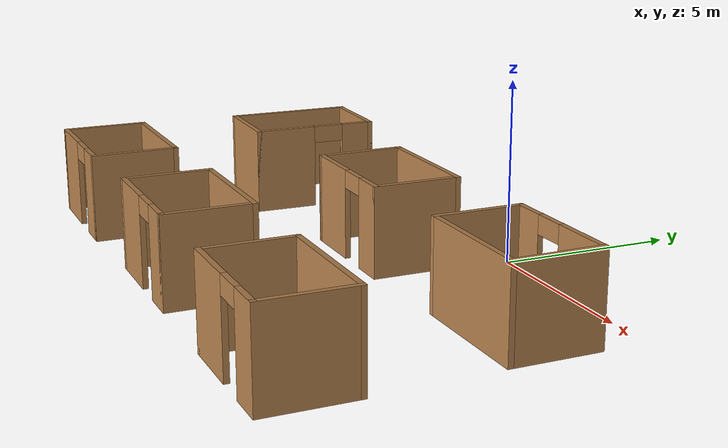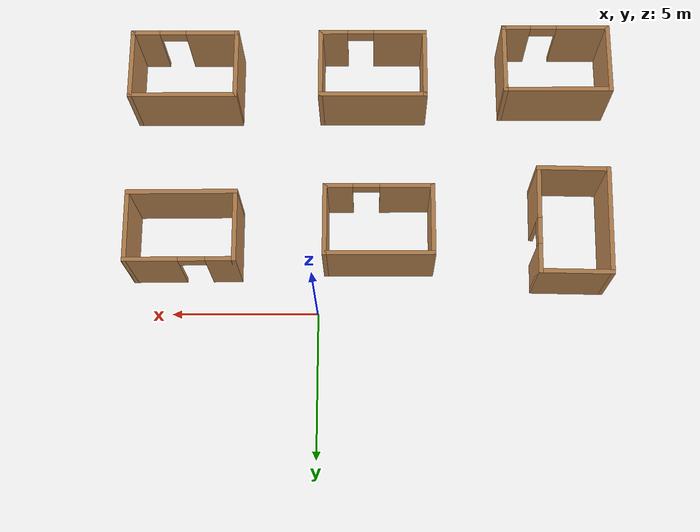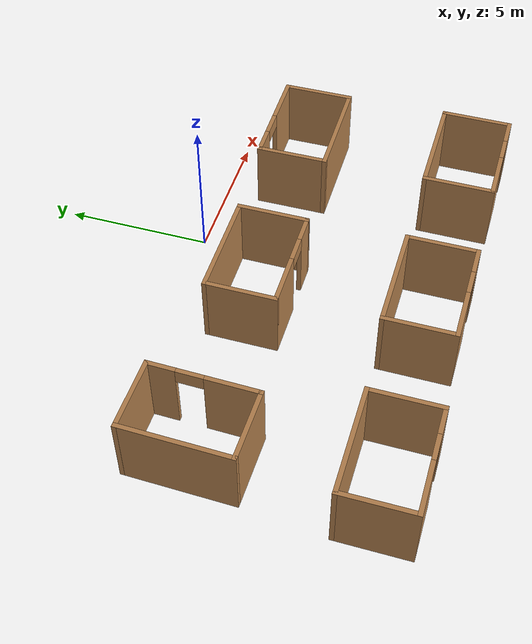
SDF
<sdf version="1.6">
 <world name="default">
  <model name="Small_Room_clone">
   <pose>-8.57106 -2.60077 0 0 -0 1.54961</pose>
   <link name="Wall_0">
    <pose>0 -1.175 0 0 -0 0</pose>
    <visual name="Wall_0_Visual_0">
     <pose>-0.9525 0 1.25 0 -0 0</pose>
     <geometry><box><size>1.845 0.15 2.5</size></box></geometry>
     <material>
      <script><uri>file://media/materials/scripts/gazebo.material</uri><name>Gazebo/Wood</name></script>
      <ambient>1 1 1 1</ambient>
     </material>
     <meta><layer>0</layer></meta>
    </visual>
    <collision name="Wall_0_Collision_0">
     <geometry><box><size>1.845 0.15 2.5</size></box></geometry>
     <pose>-0.9525 0 1.25 0 -0 0</pose>
    </collision>
    <visual name="Wall_0_Visual_1">
     <pose>1.3725 0 1.25 0 -0 0</pose>
     <geometry><box><size>1.005 0.15 2.5</size></box></geometry>
     <material>
      <script><uri>file://media/materials/scripts/gazebo.material</uri><name>Gazebo/Wood</name></script>
      <ambient>1 1 1 1</ambient>
     </material>
     <meta><layer>0</layer></meta>
    </visual>
    <collision name="Wall_0_Collision_1">
     <geometry><box><size>1.005 0.15 2.5</size></box></geometry>
     <pose>1.3725 0 1.25 0 -0 0</pose>
    </collision>
    <visual name="Wall_0_Visual_2">
     <pose>0.42 0 2.25 0 -0 0</pose>
     <geometry><box><size>0.9 0.15 0.5</size></box></geometry>
     <material>
      <script><uri>file://media/materials/scripts/gazebo.material</uri><name>Gazebo/Wood</name></script>
      <ambient>1 1 1 1</ambient>
     </material>
     <meta><layer>0</layer></meta>
    </visual>
    <collision name="Wall_0_Collision_2">
     <geometry><box><size>0.9 0.15 0.5</size></box></geometry>
     <pose>0.42 0 2.25 0 -0 0</pose>
    </collision>
   </link>
   <link name="Wall_1">
    <collision name="Wall_1_Collision">
     <geometry><box><size>2.5 0.15 2.5</size></box></geometry>
     <pose>0 0 1.25 0 -0 0</pose>
    </collision>
    <visual name="Wall_1_Visual">
     <pose>0 0 1.25 0 -0 0</pose>
     <geometry><box><size>2.5 0.15 2.5</size></box></geometry>
     <material>
      <script><uri>file://media/materials/scripts/gazebo.material</uri><name>Gazebo/Wood</name></script>
      <ambient>1 1 1 1</ambient>
     </material>
     <meta><layer>0</layer></meta>
    </visual>
    <pose>1.8 0 0 0 -0 1.5708</pose>
   </link>
   <link name="Wall_2">
    <collision name="Wall_2_Collision">
     <geometry><box><size>3.75 0.15 2.5</size></box></geometry>
     <pose>0 0 1.25 0 -0 0</pose>
    </collision>
    <visual name="Wall_2_Visual">
     <pose>0 0 1.25 0 -0 0</pose>
     <geometry><box><size>3.75 0.15 2.5</size></box></geometry>
     <material>
      <script><uri>file://media/materials/scripts/gazebo.material</uri><name>Gazebo/Wood</name></script>
      <ambient>0.760784 0.662745 0.627451 1</ambient>
     </material>
     <meta><layer>0</layer></meta>
    </visual>
    <pose>0 1.175 0 0 -0 3.14159</pose>
   </link>
   <link name="Wall_3">
    <collision name="Wall_3_Collision">
     <geometry><box><size>2.5 0.15 2.5</size></box></geometry>
     <pose>0 0 1.25 0 -0 0</pose>
    </collision>
    <visual name="Wall_3_Visual">
     <pose>0 0 1.25 0 -0 0</pose>
     <geometry><box><size>2.5 0.15 2.5</size></box></geometry>
     <material>
      <script><uri>file://media/materials/scripts/gazebo.material</uri><name>Gazebo/Wood</name></script>
      <ambient>0.760784 0.662745 0.627451 1</ambient>
     </material>
     <meta><layer>0</layer></meta>
    </visual>
    <pose>-1.8 0 0 0 0 -1.5708</pose>
   </link>
   <static>1</static>
  </model>
  <model name="Small_Room_clone_0">
   <pose>4.49489 -2.40828 0 0 0 -3.13544</pose>
   <link name="Wall_0">
    <pose>0 -1.175 0 0 -0 0</pose>
    <visual name="Wall_0_Visual_0">
     <pose>-0.9525 0 1.25 0 -0 0</pose>
     <geometry><box><size>1.845 0.15 2.5</size></box></geometry>
     <material>
      <script><uri>file://media/materials/scripts/gazebo.material</uri><name>Gazebo/Wood</name></script>
      <ambient>1 1 1 1</ambient>
     </material>
     <meta><layer>0</layer></meta>
    </visual>
    <collision name="Wall_0_Collision_0">
     <geometry><box><size>1.845 0.15 2.5</size></box></geometry>
     <pose>-0.9525 0 1.25 0 -0 0</pose>
    </collision>
    <visual name="Wall_0_Visual_1">
     <pose>1.3725 0 1.25 0 -0 0</pose>
     <geometry><box><size>1.005 0.15 2.5</size></box></geometry>
     <material>
      <script><uri>file://media/materials/scripts/gazebo.material</uri><name>Gazebo/Wood</name></script>
      <ambient>1 1 1 1</ambient>
     </material>
     <meta><layer>0</layer></meta>
    </visual>
    <collision name="Wall_0_Collision_1">
     <geometry><box><size>1.005 0.15 2.5</size></box></geometry>
     <pose>1.3725 0 1.25 0 -0 0</pose>
    </collision>
    <visual name="Wall_0_Visual_2">
     <pose>0.42 0 2.25 0 -0 0</pose>
     <geometry><box><size>0.9 0.15 0.5</size></box></geometry>
     <material>
      <script><uri>file://media/materials/scripts/gazebo.material</uri><name>Gazebo/Wood</name></script>
      <ambient>1 1 1 1</ambient>
     </material>
     <meta><layer>0</layer></meta>
    </visual>
    <collision name="Wall_0_Collision_2">
     <geometry><box><size>0.9 0.15 0.5</size></box></geometry>
     <pose>0.42 0 2.25 0 -0 0</pose>
    </collision>
   </link>
   <link name="Wall_1">
    <collision name="Wall_1_Collision">
     <geometry><box><size>2.5 0.15 2.5</size></box></geometry>
     <pose>0 0 1.25 0 -0 0</pose>
    </collision>
    <visual name="Wall_1_Visual">
     <pose>0 0 1.25 0 -0 0</pose>
     <geometry><box><size>2.5 0.15 2.5</size></box></geometry>
     <material>
      <script><uri>file://media/materials/scripts/gazebo.material</uri><name>Gazebo/Wood</name></script>
      <ambient>1 1 1 1</ambient>
     </material>
     <meta><layer>0</layer></meta>
    </visual>
    <pose>1.8 0 0 0 -0 1.5708</pose>
   </link>
   <link name="Wall_2">
    <collision name="Wall_2_Collision">
     <geometry><box><size>3.75 0.15 2.5</size></box></geometry>
     <pose>0 0 1.25 0 -0 0</pose>
    </collision>
    <visual name="Wall_2_Visual">
     <pose>0 0 1.25 0 -0 0</pose>
     <geometry><box><size>3.75 0.15 2.5</size></box></geometry>
     <material>
      <script><uri>file://media/materials/scripts/gazebo.material</uri><name>Gazebo/Wood</name></script>
      <ambient>0.760784 0.662745 0.627451 1</ambient>
     </material>
     <meta><layer>0</layer></meta>
    </visual>
    <pose>0 1.175 0 0 -0 3.14159</pose>
   </link>
   <link name="Wall_3">
    <collision name="Wall_3_Collision">
     <geometry><box><size>2.5 0.15 2.5</size></box></geometry>
     <pose>0 0 1.25 0 -0 0</pose>
    </collision>
    <visual name="Wall_3_Visual">
     <pose>0 0 1.25 0 -0 0</pose>
     <geometry><box><size>2.5 0.15 2.5</size></box></geometry>
     <material>
      <script><uri>file://media/materials/scripts/gazebo.material</uri><name>Gazebo/Wood</name></script>
      <ambient>0.760784 0.662745 0.627451 1</ambient>
     </material>
     <meta><layer>0</layer></meta>
    </visual>
    <pose>-1.8 0 0 0 0 -1.5708</pose>
   </link>
   <static>1</static>
  </model>
  <model name="Small_Room_clone_6">
   <pose>-2.07532 -2.61831 0 0 -0 0</pose>
   <link name="Wall_0">
    <pose>0 -1.175 0 0 -0 0</pose>
    <visual name="Wall_0_Visual_0">
     <pose>-0.9525 0 1.25 0 -0 0</pose>
     <geometry><box><size>1.845 0.15 2.5</size></box></geometry>
     <material>
      <script><uri>file://media/materials/scripts/gazebo.material</uri><name>Gazebo/Wood</name></script>
      <ambient>1 1 1 1</ambient>
     </material>
     <meta><layer>0</layer></meta>
    </visual>
    <collision name="Wall_0_Collision_0">
     <geometry><box><size>1.845 0.15 2.5</size></box></geometry>
     <pose>-0.9525 0 1.25 0 -0 0</pose>
    </collision>
    <visual name="Wall_0_Visual_1">
     <pose>1.3725 0 1.25 0 -0 0</pose>
     <geometry><box><size>1.005 0.15 2.5</size></box></geometry>
     <material>
      <script><uri>file://media/materials/scripts/gazebo.material</uri><name>Gazebo/Wood</name></script>
      <ambient>1 1 1 1</ambient>
     </material>
     <meta><layer>0</layer></meta>
    </visual>
    <collision name="Wall_0_Collision_1">
     <geometry><box><size>1.005 0.15 2.5</size></box></geometry>
     <pose>1.3725 0 1.25 0 -0 0</pose>
    </collision>
    <visual name="Wall_0_Visual_2">
     <pose>0.42 0 2.25 0 -0 0</pose>
     <geometry><box><size>0.9 0.15 0.5</size></box></geometry>
     <material>
      <script><uri>file://media/materials/scripts/gazebo.material</uri><name>Gazebo/Wood</name></script>
      <ambient>1 1 1 1</ambient>
     </material>
     <meta><layer>0</layer></meta>
    </visual>
    <collision name="Wall_0_Collision_2">
     <geometry><box><size>0.9 0.15 0.5</size></box></geometry>
     <pose>0.42 0 2.25 0 -0 0</pose>
    </collision>
   </link>
   <link name="Wall_1">
    <collision name="Wall_1_Collision">
     <geometry><box><size>2.5 0.15 2.5</size></box></geometry>
     <pose>0 0 1.25 0 -0 0</pose>
    </collision>
    <visual name="Wall_1_Visual">
     <pose>0 0 1.25 0 -0 0</pose>
     <geometry><box><size>2.5 0.15 2.5</size></box></geometry>
     <material>
      <script><uri>file://media/materials/scripts/gazebo.material</uri><name>Gazebo/Wood</name></script>
      <ambient>1 1 1 1</ambient>
     </material>
     <meta><layer>0</layer></meta>
    </visual>
    <pose>1.8 0 0 0 -0 1.5708</pose>
   </link>
   <link name="Wall_2">
    <collision name="Wall_2_Collision">
     <geometry><box><size>3.75 0.15 2.5</size></box></geometry>
     <pose>0 0 1.25 0 -0 0</pose>
    </collision>
    <visual name="Wall_2_Visual">
     <pose>0 0 1.25 0 -0 0</pose>
     <geometry><box><size>3.75 0.15 2.5</size></box></geometry>
     <material>
      <script><uri>file://media/materials/scripts/gazebo.material</uri><name>Gazebo/Wood</name></script>
      <ambient>0.760784 0.662745 0.627451 1</ambient>
     </material>
     <meta><layer>0</layer></meta>
    </visual>
    <pose>0 1.175 0 0 -0 3.14159</pose>
   </link>
   <link name="Wall_3">
    <collision name="Wall_3_Collision">
     <geometry><box><size>2.5 0.15 2.5</size></box></geometry>
     <pose>0 0 1.25 0 -0 0</pose>
    </collision>
    <visual name="Wall_3_Visual">
     <pose>0 0 1.25 0 -0 0</pose>
     <geometry><box><size>2.5 0.15 2.5</size></box></geometry>
     <material>
      <script><uri>file://media/materials/scripts/gazebo.material</uri><name>Gazebo/Wood</name></script>
      <ambient>0.760784 0.662745 0.627451 1</ambient>
     </material>
     <meta><layer>0</layer></meta>
    </visual>
    <pose>-1.8 0 0 0 0 -1.5708</pose>
   </link>
   <static>1</static>
  </model>
  <model name="Small_Room_clone_6_clone">
   <pose>-1.8797 -8.31125 0 0 -0 0</pose>
   <link name="Wall_0">
    <pose>0 -1.175 0 0 -0 0</pose>
    <visual name="Wall_0_Visual_0">
     <pose>-0.9525 0 1.25 0 -0 0</pose>
     <geometry><box><size>1.845 0.15 2.5</size></box></geometry>
     <material>
      <script><uri>file://media/materials/scripts/gazebo.material</uri><name>Gazebo/Wood</name></script>
      <ambient>1 1 1 1</ambient>
     </material>
     <meta><layer>0</layer></meta>
    </visual>
    <collision name="Wall_0_Collision_0">
     <geometry><box><size>1.845 0.15 2.5</size></box></geometry>
     <pose>-0.9525 0 1.25 0 -0 0</pose>
    </collision>
    <visual name="Wall_0_Visual_1">
     <pose>1.3725 0 1.25 0 -0 0</pose>
     <geometry><box><size>1.005 0.15 2.5</size></box></geometry>
     <material>
      <script><uri>file://media/materials/scripts/gazebo.material</uri><name>Gazebo/Wood</name></script>
      <ambient>1 1 1 1</ambient>
     </material>
     <meta><layer>0</layer></meta>
    </visual>
    <collision name="Wall_0_Collision_1">
     <geometry><box><size>1.005 0.15 2.5</size></box></geometry>
     <pose>1.3725 0 1.25 0 -0 0</pose>
    </collision>
    <visual name="Wall_0_Visual_2">
     <pose>0.42 0 2.25 0 -0 0</pose>
     <geometry><box><size>0.9 0.15 0.5</size></box></geometry>
     <material>
      <script><uri>file://media/materials/scripts/gazebo.material</uri><name>Gazebo/Wood</name></script>
      <ambient>1 1 1 1</ambient>
     </material>
     <meta><layer>0</layer></meta>
    </visual>
    <collision name="Wall_0_Collision_2">
     <geometry><box><size>0.9 0.15 0.5</size></box></geometry>
     <pose>0.42 0 2.25 0 -0 0</pose>
    </collision>
   </link>
   <link name="Wall_1">
    <collision name="Wall_1_Collision">
     <geometry><box><size>2.5 0.15 2.5</size></box></geometry>
     <pose>0 0 1.25 0 -0 0</pose>
    </collision>
    <visual name="Wall_1_Visual">
     <pose>0 0 1.25 0 -0 0</pose>
     <geometry><box><size>2.5 0.15 2.5</size></box></geometry>
     <material>
      <script><uri>file://media/materials/scripts/gazebo.material</uri><name>Gazebo/Wood</name></script>
      <ambient>1 1 1 1</ambient>
     </material>
     <meta><layer>0</layer></meta>
    </visual>
    <pose>1.8 0 0 0 -0 1.5708</pose>
   </link>
   <link name="Wall_2">
    <collision name="Wall_2_Collision">
     <geometry><box><size>3.75 0.15 2.5</size></box></geometry>
     <pose>0 0 1.25 0 -0 0</pose>
    </collision>
    <visual name="Wall_2_Visual">
     <pose>0 0 1.25 0 -0 0</pose>
     <geometry><box><size>3.75 0.15 2.5</size></box></geometry>
     <material>
      <script><uri>file://media/materials/scripts/gazebo.material</uri><name>Gazebo/Wood</name></script>
      <ambient>0.760784 0.662745 0.627451 1</ambient>
     </material>
     <meta><layer>0</layer></meta>
    </visual>
    <pose>0 1.175 0 0 -0 3.14159</pose>
   </link>
   <link name="Wall_3">
    <collision name="Wall_3_Collision">
     <geometry><box><size>2.5 0.15 2.5</size></box></geometry>
     <pose>0 0 1.25 0 -0 0</pose>
    </collision>
    <visual name="Wall_3_Visual">
     <pose>0 0 1.25 0 -0 0</pose>
     <geometry><box><size>2.5 0.15 2.5</size></box></geometry>
     <material>
      <script><uri>file://media/materials/scripts/gazebo.material</uri><name>Gazebo/Wood</name></script>
      <ambient>0.760784 0.662745 0.627451 1</ambient>
     </material>
     <meta><layer>0</layer></meta>
    </visual>
    <pose>-1.8 0 0 0 0 -1.5708</pose>
   </link>
   <static>1</static>
  </model>
  <model name="Small_Room_clone_6_clone_0">
   <pose>-8.24169 -8.48704 0 0 -0 0</pose>
   <link name="Wall_0">
    <pose>0 -1.175 0 0 -0 0</pose>
    <visual name="Wall_0_Visual_0">
     <pose>-0.9525 0 1.25 0 -0 0</pose>
     <geometry><box><size>1.845 0.15 2.5</size></box></geometry>
     <material>
      <script><uri>file://media/materials/scripts/gazebo.material</uri><name>Gazebo/Wood</name></script>
      <ambient>1 1 1 1</ambient>
     </material>
     <meta><layer>0</layer></meta>
    </visual>
    <collision name="Wall_0_Collision_0">
     <geometry><box><size>1.845 0.15 2.5</size></box></geometry>
     <pose>-0.9525 0 1.25 0 -0 0</pose>
    </collision>
    <visual name="Wall_0_Visual_1">
     <pose>1.3725 0 1.25 0 -0 0</pose>
     <geometry><box><size>1.005 0.15 2.5</size></box></geometry>
     <material>
      <script><uri>file://media/materials/scripts/gazebo.material</uri><name>Gazebo/Wood</name></script>
      <ambient>1 1 1 1</ambient>
     </material>
     <meta><layer>0</layer></meta>
    </visual>
    <collision name="Wall_0_Collision_1">
     <geometry><box><size>1.005 0.15 2.5</size></box></geometry>
     <pose>1.3725 0 1.25 0 -0 0</pose>
    </collision>
    <visual name="Wall_0_Visual_2">
     <pose>0.42 0 2.25 0 -0 0</pose>
     <geometry><box><size>0.9 0.15 0.5</size></box></geometry>
     <material>
      <script><uri>file://media/materials/scripts/gazebo.material</uri><name>Gazebo/Wood</name></script>
      <ambient>1 1 1 1</ambient>
     </material>
     <meta><layer>0</layer></meta>
    </visual>
    <collision name="Wall_0_Collision_2">
     <geometry><box><size>0.9 0.15 0.5</size></box></geometry>
     <pose>0.42 0 2.25 0 -0 0</pose>
    </collision>
   </link>
   <link name="Wall_1">
    <collision name="Wall_1_Collision">
     <geometry><box><size>2.5 0.15 2.5</size></box></geometry>
     <pose>0 0 1.25 0 -0 0</pose>
    </collision>
    <visual name="Wall_1_Visual">
     <pose>0 0 1.25 0 -0 0</pose>
     <geometry><box><size>2.5 0.15 2.5</size></box></geometry>
     <material>
      <script><uri>file://media/materials/scripts/gazebo.material</uri><name>Gazebo/Wood</name></script>
      <ambient>1 1 1 1</ambient>
     </material>
     <meta><layer>0</layer></meta>
    </visual>
    <pose>1.8 0 0 0 -0 1.5708</pose>
   </link>
   <link name="Wall_2">
    <collision name="Wall_2_Collision">
     <geometry><box><size>3.75 0.15 2.5</size></box></geometry>
     <pose>0 0 1.25 0 -0 0</pose>
    </collision>
    <visual name="Wall_2_Visual">
     <pose>0 0 1.25 0 -0 0</pose>
     <geometry><box><size>3.75 0.15 2.5</size></box></geometry>
     <material>
      <script><uri>file://media/materials/scripts/gazebo.material</uri><name>Gazebo/Wood</name></script>
      <ambient>0.760784 0.662745 0.627451 1</ambient>
     </material>
     <meta><layer>0</layer></meta>
    </visual>
    <pose>0 1.175 0 0 -0 3.14159</pose>
   </link>
   <link name="Wall_3">
    <collision name="Wall_3_Collision">
     <geometry><box><size>2.5 0.15 2.5</size></box></geometry>
     <pose>0 0 1.25 0 -0 0</pose>
    </collision>
    <visual name="Wall_3_Visual">
     <pose>0 0 1.25 0 -0 0</pose>
     <geometry><box><size>2.5 0.15 2.5</size></box></geometry>
     <material>
      <script><uri>file://media/materials/scripts/gazebo.material</uri><name>Gazebo/Wood</name></script>
      <ambient>0.760784 0.662745 0.627451 1</ambient>
     </material>
     <meta><layer>0</layer></meta>
    </visual>
    <pose>-1.8 0 0 0 0 -1.5708</pose>
   </link>
   <static>1</static>
  </model>
  <model name="Small_Room_clone_6_clone_1">
   <pose>4.64059 -8.29003 0 0 -0 0</pose>
   <link name="Wall_0">
    <pose>0 -1.175 0 0 -0 0</pose>
    <visual name="Wall_0_Visual_0">
     <pose>-0.9525 0 1.25 0 -0 0</pose>
     <geometry><box><size>1.845 0.15 2.5</size></box></geometry>
     <material>
      <script><uri>file://media/materials/scripts/gazebo.material</uri><name>Gazebo/Wood</name></script>
      <ambient>1 1 1 1</ambient>
     </material>
     <meta><layer>0</layer></meta>
    </visual>
    <collision name="Wall_0_Collision_0">
     <geometry><box><size>1.845 0.15 2.5</size></box></geometry>
     <pose>-0.9525 0 1.25 0 -0 0</pose>
    </collision>
    <visual name="Wall_0_Visual_1">
     <pose>1.3725 0 1.25 0 -0 0</pose>
     <geometry><box><size>1.005 0.15 2.5</size></box></geometry>
     <material>
      <script><uri>file://media/materials/scripts/gazebo.material</uri><name>Gazebo/Wood</name></script>
      <ambient>1 1 1 1</ambient>
     </material>
     <meta><layer>0</layer></meta>
    </visual>
    <collision name="Wall_0_Collision_1">
     <geometry><box><size>1.005 0.15 2.5</size></box></geometry>
     <pose>1.3725 0 1.25 0 -0 0</pose>
    </collision>
    <visual name="Wall_0_Visual_2">
     <pose>0.42 0 2.25 0 -0 0</pose>
     <geometry><box><size>0.9 0.15 0.5</size></box></geometry>
     <material>
      <script><uri>file://media/materials/scripts/gazebo.material</uri><name>Gazebo/Wood</name></script>
      <ambient>1 1 1 1</ambient>
     </material>
     <meta><layer>0</layer></meta>
    </visual>
    <collision name="Wall_0_Collision_2">
     <geometry><box><size>0.9 0.15 0.5</size></box></geometry>
     <pose>0.42 0 2.25 0 -0 0</pose>
    </collision>
   </link>
   <link name="Wall_1">
    <collision name="Wall_1_Collision">
     <geometry><box><size>2.5 0.15 2.5</size></box></geometry>
     <pose>0 0 1.25 0 -0 0</pose>
    </collision>
    <visual name="Wall_1_Visual">
     <pose>0 0 1.25 0 -0 0</pose>
     <geometry><box><size>2.5 0.15 2.5</size></box></geometry>
     <material>
      <script><uri>file://media/materials/scripts/gazebo.material</uri><name>Gazebo/Wood</name></script>
      <ambient>1 1 1 1</ambient>
     </material>
     <meta><layer>0</layer></meta>
    </visual>
    <pose>1.8 0 0 0 -0 1.5708</pose>
   </link>
   <link name="Wall_2">
    <collision name="Wall_2_Collision">
     <geometry><box><size>3.75 0.15 2.5</size></box></geometry>
     <pose>0 0 1.25 0 -0 0</pose>
    </collision>
    <visual name="Wall_2_Visual">
     <pose>0 0 1.25 0 -0 0</pose>
     <geometry><box><size>3.75 0.15 2.5</size></box></geometry>
     <material>
      <script><uri>file://media/materials/scripts/gazebo.material</uri><name>Gazebo/Wood</name></script>
      <ambient>0.760784 0.662745 0.627451 1</ambient>
     </material>
     <meta><layer>0</layer></meta>
    </visual>
    <pose>0 1.175 0 0 -0 3.14159</pose>
   </link>
   <link name="Wall_3">
    <collision name="Wall_3_Collision">
     <geometry><box><size>2.5 0.15 2.5</size></box></geometry>
     <pose>0 0 1.25 0 -0 0</pose>
    </collision>
    <visual name="Wall_3_Visual">
     <pose>0 0 1.25 0 -0 0</pose>
     <geometry><box><size>2.5 0.15 2.5</size></box></geometry>
     <material>
      <script><uri>file://media/materials/scripts/gazebo.material</uri><name>Gazebo/Wood</name></script>
      <ambient>0.760784 0.662745 0.627451 1</ambient>
     </material>
     <meta><layer>0</layer></meta>
    </visual>
    <pose>-1.8 0 0 0 0 -1.5708</pose>
   </link>
   <static>1</static>
  </model>
 </world>
</sdf>
